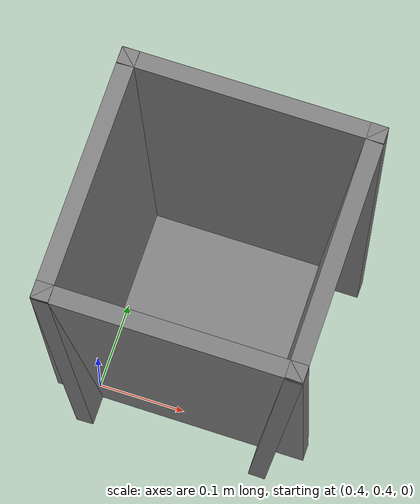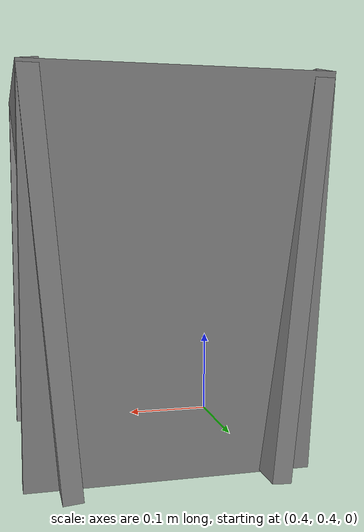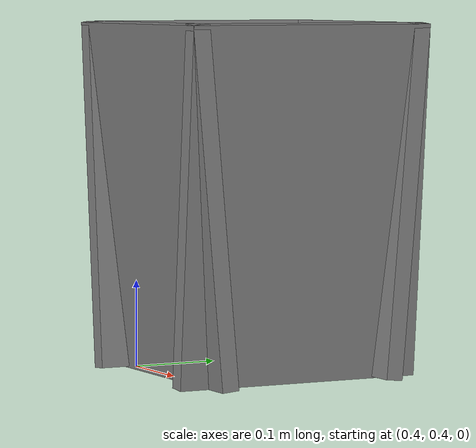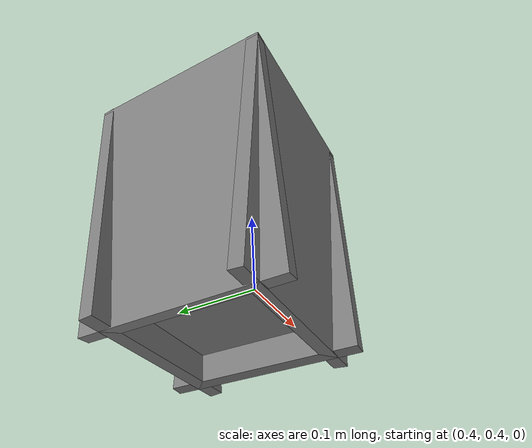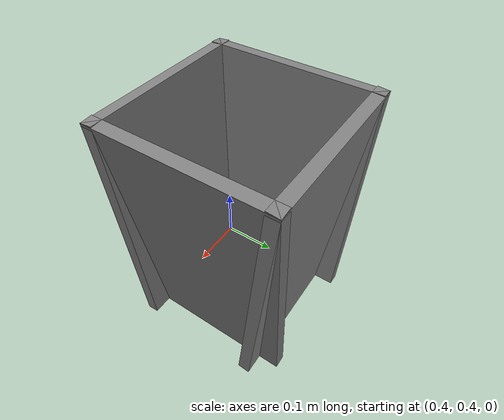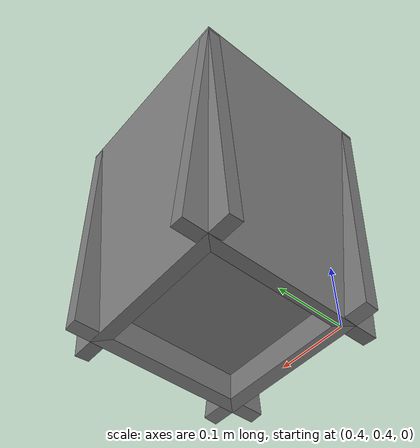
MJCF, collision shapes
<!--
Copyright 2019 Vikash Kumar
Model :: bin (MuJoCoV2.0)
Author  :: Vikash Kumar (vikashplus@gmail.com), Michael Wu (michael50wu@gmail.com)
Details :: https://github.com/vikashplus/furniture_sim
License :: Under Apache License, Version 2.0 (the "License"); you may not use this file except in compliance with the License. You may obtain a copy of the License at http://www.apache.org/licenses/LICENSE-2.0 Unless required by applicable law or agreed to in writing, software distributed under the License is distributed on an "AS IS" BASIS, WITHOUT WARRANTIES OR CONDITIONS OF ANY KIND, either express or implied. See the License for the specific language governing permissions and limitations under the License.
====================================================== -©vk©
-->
<mujoco model="bin">

    <compiler angle="radian" meshdir="/bin/" texturedir=""/>
    <include file="bin/bin_asset.xml"/>

    <worldbody>
        <body pos="0.5 0.5 0">
            <include file="bin/bin_body.xml" />
        </body>
    </worldbody>

</mujoco>

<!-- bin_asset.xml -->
<mujocoinclude>

    <asset>
        <mesh name="bin" file="../bin/meshes/bin.stl" scale="0.01 0.01 0.01" />
        <texture name="T_Metal_bin" type="cube" height="1" width="1" file="metal0.png" />
        <material name="M_Metal_bin" texture="T_Metal_bin" texrepeat="3 3" reflectance="0.7" texuniform="false" />
    </asset>

    <default>
        <default class="viz_stl_Metal_bin" >
            <geom group="1" type="mesh" material="M_Metal_bin" />
        </default>
   </default>

</mujocoinclude>

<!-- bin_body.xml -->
<mujocoinclude>

    <geom class="viz_stl_Metal_bin" type="mesh" mesh="bin" euler="-1.57 0.5 3.14" group="1" contype="0" conaffinity="0" />
    <geom type='box' pos='-.12 0 .2' size='.01 .147 .2' euler='0 -0.0872665 0' group="3" />
    <geom type='box' pos='.12 0 .2' size='.01 .147 .2' euler='0 0.0872665 0' group="3" />
    <geom type='box' pos='0 -.12 .2' size='.01 .147 .2' euler='0.0872665 0 1.57' group="3" />
    <geom type='box' pos='0 .12 .2' size='.01 .147 .2' euler='-0.0872665 0 1.57' group="3"/>
    <geom type='box' pos='0 0 .05' size='.1 .1 .005' group="3" />

</mujocoinclude>
